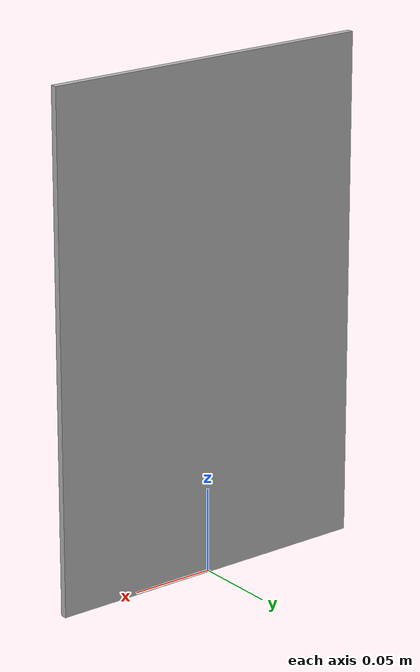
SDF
<?xml version='1.0'?>
<sdf version='1.7'>
  <world name='default'>
    <model name='model_1'>
      <pose>0 0 0 0 0 0</pose>
      <link name='Wall_1'>
        <collision name='Wall_1_Collision'>
          <geometry>
            <box>
              <size>0.2 0.004 0.3</size>
            </box>
          </geometry>
          <pose>0 0 0.15 0 -0 0</pose>
        </collision>
        <visual name='Wall_1_Visual'>
          <pose>0 0 0.15 0 -0 0</pose>
          <geometry>
            <box>
              <size>0.2 0.004 0.3</size>
            </box>
          </geometry>
          <meta>
            <layer>0</layer>
          </meta>
        </visual>
        <pose>0.0 0.0 0 0 0 0</pose>
        <inertial>
          <mass>1</mass>
          <inertia>
            <ixx>0.166667</ixx>
            <ixy>0</ixy>
            <ixz>0</ixz>
            <iyy>0.166667</iyy>
            <iyz>0</iyz>
            <izz>0.166667</izz>
          </inertia>
        </inertial>
      </link>
      <static>1</static>
    </model>
  </world>
</sdf>
